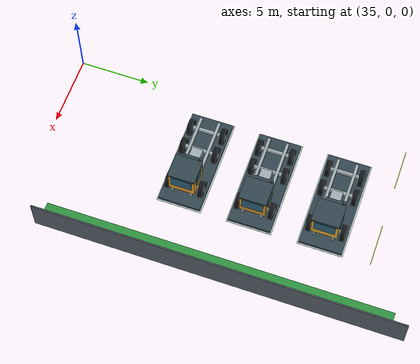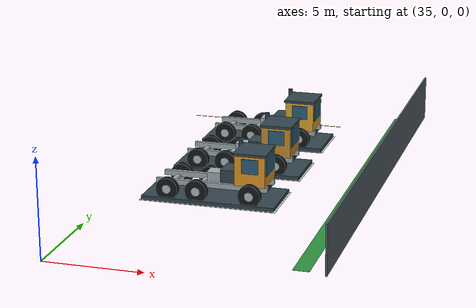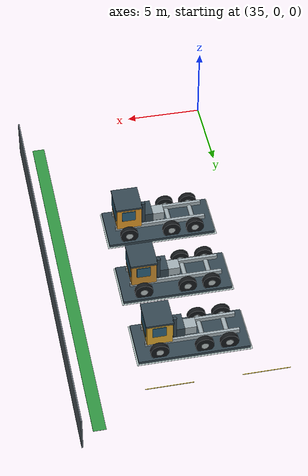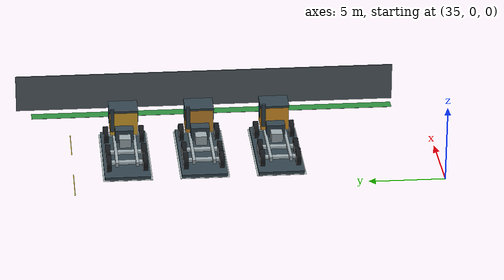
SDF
<sdf version="1.7">
 <world name="warehouse_layout_demo">
  <include><uri>model://sun</uri></include>
  <model name="pedestrian_east_north">
   <static>true</static>
   <pose>46.7 14.25 0.055 0 0 0</pose>
   <link name="marking">
    <visual name="visual">
     <geometry><box><size>0.8 24.5 0.012</size></box></geometry>
     <material><ambient>0.18 0.57 0.25 1</ambient><diffuse>0.18 0.57 0.25 1</diffuse></material>
    </visual>
   </link>
  </model>
  <model name="east_fence_north">
   <static>true</static>
   <pose>47.9 14.65 1.25 0 0 0</pose>
   <link name="link">
    <collision name="collision">
     <geometry><box><size>0.09 25.7 2.5</size></box></geometry>
     <surface><friction><ode><mu>0.9</mu><mu2>0.9</mu2></ode></friction></surface>
    </collision>
    <visual name="visual">
     <geometry><box><size>0.09 25.7 2.5</size></box></geometry>
     <material><ambient>0.33 0.37 0.40 1</ambient><diffuse>0.33 0.37 0.40 1</diffuse></material>
    </visual>
   </link>
  </model>
  <model name="vehicle_stage_3_line_2_ne_pad">
   <static>true</static>
   <pose>40.0 10.5 0.012 0 0 0</pose>
   <link name="marking">
    <visual name="visual">
     <geometry><box><size>7.2 3.2 0.012</size></box></geometry>
     <material><ambient>0.72 0.79 0.78 1</ambient><diffuse>0.72 0.79 0.78 1</diffuse></material>
    </visual>
   </link>
  </model>
  <model name="vehicle_stage_3_line_2_ne">
   <static>true</static>
   <pose>40.0 10.5 0 0 0 0</pose>
   <link name="fixture">
    <collision name="collision">
     <pose>0 0 1.9 0 0 0</pose>
     <geometry><box><size>7.0 3.0 3.8</size></box></geometry>
    </collision>
    <visual name="service_platform">
     <pose>0 0 0.11 0 0 0</pose>
     <geometry><box><size>7.0 3.0 0.22</size></box></geometry>
     <material><ambient>0.20 0.27 0.31 1</ambient><diffuse>0.20 0.27 0.31 1</diffuse></material>
    </visual>
    <visual name="chassis_rail_0">
     <pose>0 -0.66 0.85 0 0 0</pose>
     <geometry><box><size>5.9 0.19 0.28</size></box></geometry>
     <material><ambient>0.63 0.68 0.70 1</ambient><diffuse>0.63 0.68 0.70 1</diffuse></material>
    </visual>
    <visual name="haul_tire_0_0">
     <pose>-2.2 -1.18 0.63 1.57079632679 0 0</pose>
     <geometry><cylinder><radius>0.58</radius><length>0.32</length></cylinder></geometry>
     <material><ambient>0.08 0.09 0.10 1</ambient><diffuse>0.08 0.09 0.10 1</diffuse></material>
    </visual>
    <visual name="tire_hub_0_0">
     <pose>-2.2 -1.18 0.63 1.57079632679 0 0</pose>
     <geometry><cylinder><radius>0.23</radius><length>0.34</length></cylinder></geometry>
     <material><ambient>0.70 0.74 0.74 1</ambient><diffuse>0.70 0.74 0.74 1</diffuse></material>
    </visual>
    <visual name="haul_tire_0_1">
     <pose>-0.65 -1.18 0.63 1.57079632679 0 0</pose>
     <geometry><cylinder><radius>0.58</radius><length>0.32</length></cylinder></geometry>
     <material><ambient>0.08 0.09 0.10 1</ambient><diffuse>0.08 0.09 0.10 1</diffuse></material>
    </visual>
    <visual name="tire_hub_0_1">
     <pose>-0.65 -1.18 0.63 1.57079632679 0 0</pose>
     <geometry><cylinder><radius>0.23</radius><length>0.34</length></cylinder></geometry>
     <material><ambient>0.70 0.74 0.74 1</ambient><diffuse>0.70 0.74 0.74 1</diffuse></material>
    </visual>
    <visual name="haul_tire_0_2">
     <pose>2.15 -1.18 0.63 1.57079632679 0 0</pose>
     <geometry><cylinder><radius>0.58</radius><length>0.32</length></cylinder></geometry>
     <material><ambient>0.08 0.09 0.10 1</ambient><diffuse>0.08 0.09 0.10 1</diffuse></material>
    </visual>
    <visual name="tire_hub_0_2">
     <pose>2.15 -1.18 0.63 1.57079632679 0 0</pose>
     <geometry><cylinder><radius>0.23</radius><length>0.34</length></cylinder></geometry>
     <material><ambient>0.70 0.74 0.74 1</ambient><diffuse>0.70 0.74 0.74 1</diffuse></material>
    </visual>
    <visual name="chassis_rail_1">
     <pose>0 0.66 0.85 0 0 0</pose>
     <geometry><box><size>5.9 0.19 0.28</size></box></geometry>
     <material><ambient>0.63 0.68 0.70 1</ambient><diffuse>0.63 0.68 0.70 1</diffuse></material>
    </visual>
    <visual name="haul_tire_1_0">
     <pose>-2.2 1.18 0.63 1.57079632679 0 0</pose>
     <geometry><cylinder><radius>0.58</radius><length>0.32</length></cylinder></geometry>
     <material><ambient>0.08 0.09 0.10 1</ambient><diffuse>0.08 0.09 0.10 1</diffuse></material>
    </visual>
    <visual name="tire_hub_1_0">
     <pose>-2.2 1.18 0.63 1.57079632679 0 0</pose>
     <geometry><cylinder><radius>0.23</radius><length>0.34</length></cylinder></geometry>
     <material><ambient>0.70 0.74 0.74 1</ambient><diffuse>0.70 0.74 0.74 1</diffuse></material>
    </visual>
    <visual name="haul_tire_1_1">
     <pose>-0.65 1.18 0.63 1.57079632679 0 0</pose>
     <geometry><cylinder><radius>0.58</radius><length>0.32</length></cylinder></geometry>
     <material><ambient>0.08 0.09 0.10 1</ambient><diffuse>0.08 0.09 0.10 1</diffuse></material>
    </visual>
    <visual name="tire_hub_1_1">
     <pose>-0.65 1.18 0.63 1.57079632679 0 0</pose>
     <geometry><cylinder><radius>0.23</radius><length>0.34</length></cylinder></geometry>
     <material><ambient>0.70 0.74 0.74 1</ambient><diffuse>0.70 0.74 0.74 1</diffuse></material>
    </visual>
    <visual name="haul_tire_1_2">
     <pose>2.15 1.18 0.63 1.57079632679 0 0</pose>
     <geometry><cylinder><radius>0.58</radius><length>0.32</length></cylinder></geometry>
     <material><ambient>0.08 0.09 0.10 1</ambient><diffuse>0.08 0.09 0.10 1</diffuse></material>
    </visual>
    <visual name="tire_hub_1_2">
     <pose>2.15 1.18 0.63 1.57079632679 0 0</pose>
     <geometry><cylinder><radius>0.23</radius><length>0.34</length></cylinder></geometry>
     <material><ambient>0.70 0.74 0.74 1</ambient><diffuse>0.70 0.74 0.74 1</diffuse></material>
    </visual>
    <visual name="drive_axle_0">
     <pose>-2.2 0 0.68 1.57079632679 0 0</pose>
     <geometry><cylinder><radius>0.15</radius><length>2.38</length></cylinder></geometry>
     <material><ambient>0.63 0.68 0.70 1</ambient><diffuse>0.63 0.68 0.70 1</diffuse></material>
    </visual>
    <visual name="drive_axle_1">
     <pose>-0.65 0 0.68 1.57079632679 0 0</pose>
     <geometry><cylinder><radius>0.15</radius><length>2.38</length></cylinder></geometry>
     <material><ambient>0.63 0.68 0.70 1</ambient><diffuse>0.63 0.68 0.70 1</diffuse></material>
    </visual>
    <visual name="drive_axle_2">
     <pose>2.15 0 0.68 1.57079632679 0 0</pose>
     <geometry><cylinder><radius>0.15</radius><length>2.38</length></cylinder></geometry>
     <material><ambient>0.63 0.68 0.70 1</ambient><diffuse>0.63 0.68 0.70 1</diffuse></material>
    </visual>
    <visual name="diesel_engine">
     <pose>1.15 0 1.26 0 0 0</pose>
     <geometry><box><size>1.38 1.22 0.83</size></box></geometry>
     <material><ambient>0.20 0.27 0.31 1</ambient><diffuse>0.20 0.27 0.31 1</diffuse></material>
    </visual>
    <visual name="gearbox">
     <pose>0.08 0 1.12 0 0 0</pose>
     <geometry><box><size>0.82 0.76 0.6</size></box></geometry>
     <material><ambient>0.63 0.68 0.70 1</ambient><diffuse>0.63 0.68 0.70 1</diffuse></material>
    </visual>
    <visual name="radiator_fan">
     <pose>1.98 0 1.29 1.57079632679 0 0</pose>
     <geometry><cylinder><radius>0.41</radius><length>0.15</length></cylinder></geometry>
     <material><ambient>0.76 0.80 0.79 1</ambient><diffuse>0.76 0.80 0.79 1</diffuse></material>
    </visual>
    <visual name="operator_cab">
     <pose>2.08 0 1.82 0 0 0</pose>
     <geometry><box><size>1.6 1.83 1.62</size></box></geometry>
     <material><ambient>0.89 0.60 0.15 1</ambient><diffuse>0.89 0.60 0.15 1</diffuse></material>
    </visual>
    <visual name="cab_roof">
     <pose>2.08 0 2.66 0 0 0</pose>
     <geometry><box><size>1.72 1.91 0.14</size></box></geometry>
     <material><ambient>0.20 0.27 0.31 1</ambient><diffuse>0.20 0.27 0.31 1</diffuse></material>
    </visual>
    <visual name="windshield">
     <pose>2.91 0 2.03 0 0 0</pose>
     <geometry><box><size>0.045 1.48 0.91</size></box></geometry>
     <material><ambient>0.17 0.38 0.48 1</ambient><diffuse>0.17 0.38 0.48 1</diffuse></material>
    </visual>
    <visual name="exhaust_stack">
     <pose>1.14 0.76 2.15 0.0 0 0</pose>
     <geometry><cylinder><radius>0.12</radius><length>1.57</length></cylinder></geometry>
     <material><ambient>0.20 0.27 0.31 1</ambient><diffuse>0.20 0.27 0.31 1</diffuse></material>
    </visual>
    <visual name="cab_side_glass_0">
     <pose>2.11 -0.95 2.08 0 0 0</pose>
     <geometry><box><size>0.87 0.035 0.76</size></box></geometry>
     <material><ambient>0.17 0.38 0.48 1</ambient><diffuse>0.17 0.38 0.48 1</diffuse></material>
    </visual>
    <visual name="cab_side_glass_1">
     <pose>2.11 0.95 2.08 0 0 0</pose>
     <geometry><box><size>0.87 0.035 0.76</size></box></geometry>
     <material><ambient>0.17 0.38 0.48 1</ambient><diffuse>0.17 0.38 0.48 1</diffuse></material>
    </visual>
   </link>
  </model>
  <model name="vehicle_stage_3_line_3_ne_pad">
   <static>true</static>
   <pose>40.0 15.5 0.012 0 0 0</pose>
   <link name="marking">
    <visual name="visual">
     <geometry><box><size>7.2 3.2 0.012</size></box></geometry>
     <material><ambient>0.72 0.79 0.78 1</ambient><diffuse>0.72 0.79 0.78 1</diffuse></material>
    </visual>
   </link>
  </model>
  <model name="vehicle_stage_3_line_3_ne">
   <static>true</static>
   <pose>40.0 15.5 0 0 0 0</pose>
   <link name="fixture">
    <collision name="collision">
     <pose>0 0 1.9 0 0 0</pose>
     <geometry><box><size>7.0 3.0 3.8</size></box></geometry>
    </collision>
    <visual name="service_platform">
     <pose>0 0 0.11 0 0 0</pose>
     <geometry><box><size>7.0 3.0 0.22</size></box></geometry>
     <material><ambient>0.20 0.27 0.31 1</ambient><diffuse>0.20 0.27 0.31 1</diffuse></material>
    </visual>
    <visual name="chassis_rail_0">
     <pose>0 -0.66 0.85 0 0 0</pose>
     <geometry><box><size>5.9 0.19 0.28</size></box></geometry>
     <material><ambient>0.63 0.68 0.70 1</ambient><diffuse>0.63 0.68 0.70 1</diffuse></material>
    </visual>
    <visual name="haul_tire_0_0">
     <pose>-2.2 -1.18 0.63 1.57079632679 0 0</pose>
     <geometry><cylinder><radius>0.58</radius><length>0.32</length></cylinder></geometry>
     <material><ambient>0.08 0.09 0.10 1</ambient><diffuse>0.08 0.09 0.10 1</diffuse></material>
    </visual>
    <visual name="tire_hub_0_0">
     <pose>-2.2 -1.18 0.63 1.57079632679 0 0</pose>
     <geometry><cylinder><radius>0.23</radius><length>0.34</length></cylinder></geometry>
     <material><ambient>0.70 0.74 0.74 1</ambient><diffuse>0.70 0.74 0.74 1</diffuse></material>
    </visual>
    <visual name="haul_tire_0_1">
     <pose>-0.65 -1.18 0.63 1.57079632679 0 0</pose>
     <geometry><cylinder><radius>0.58</radius><length>0.32</length></cylinder></geometry>
     <material><ambient>0.08 0.09 0.10 1</ambient><diffuse>0.08 0.09 0.10 1</diffuse></material>
    </visual>
    <visual name="tire_hub_0_1">
     <pose>-0.65 -1.18 0.63 1.57079632679 0 0</pose>
     <geometry><cylinder><radius>0.23</radius><length>0.34</length></cylinder></geometry>
     <material><ambient>0.70 0.74 0.74 1</ambient><diffuse>0.70 0.74 0.74 1</diffuse></material>
    </visual>
    <visual name="haul_tire_0_2">
     <pose>2.15 -1.18 0.63 1.57079632679 0 0</pose>
     <geometry><cylinder><radius>0.58</radius><length>0.32</length></cylinder></geometry>
     <material><ambient>0.08 0.09 0.10 1</ambient><diffuse>0.08 0.09 0.10 1</diffuse></material>
    </visual>
    <visual name="tire_hub_0_2">
     <pose>2.15 -1.18 0.63 1.57079632679 0 0</pose>
     <geometry><cylinder><radius>0.23</radius><length>0.34</length></cylinder></geometry>
     <material><ambient>0.70 0.74 0.74 1</ambient><diffuse>0.70 0.74 0.74 1</diffuse></material>
    </visual>
    <visual name="chassis_rail_1">
     <pose>0 0.66 0.85 0 0 0</pose>
     <geometry><box><size>5.9 0.19 0.28</size></box></geometry>
     <material><ambient>0.63 0.68 0.70 1</ambient><diffuse>0.63 0.68 0.70 1</diffuse></material>
    </visual>
    <visual name="haul_tire_1_0">
     <pose>-2.2 1.18 0.63 1.57079632679 0 0</pose>
     <geometry><cylinder><radius>0.58</radius><length>0.32</length></cylinder></geometry>
     <material><ambient>0.08 0.09 0.10 1</ambient><diffuse>0.08 0.09 0.10 1</diffuse></material>
    </visual>
    <visual name="tire_hub_1_0">
     <pose>-2.2 1.18 0.63 1.57079632679 0 0</pose>
     <geometry><cylinder><radius>0.23</radius><length>0.34</length></cylinder></geometry>
     <material><ambient>0.70 0.74 0.74 1</ambient><diffuse>0.70 0.74 0.74 1</diffuse></material>
    </visual>
    <visual name="haul_tire_1_1">
     <pose>-0.65 1.18 0.63 1.57079632679 0 0</pose>
     <geometry><cylinder><radius>0.58</radius><length>0.32</length></cylinder></geometry>
     <material><ambient>0.08 0.09 0.10 1</ambient><diffuse>0.08 0.09 0.10 1</diffuse></material>
    </visual>
    <visual name="tire_hub_1_1">
     <pose>-0.65 1.18 0.63 1.57079632679 0 0</pose>
     <geometry><cylinder><radius>0.23</radius><length>0.34</length></cylinder></geometry>
     <material><ambient>0.70 0.74 0.74 1</ambient><diffuse>0.70 0.74 0.74 1</diffuse></material>
    </visual>
    <visual name="haul_tire_1_2">
     <pose>2.15 1.18 0.63 1.57079632679 0 0</pose>
     <geometry><cylinder><radius>0.58</radius><length>0.32</length></cylinder></geometry>
     <material><ambient>0.08 0.09 0.10 1</ambient><diffuse>0.08 0.09 0.10 1</diffuse></material>
    </visual>
    <visual name="tire_hub_1_2">
     <pose>2.15 1.18 0.63 1.57079632679 0 0</pose>
     <geometry><cylinder><radius>0.23</radius><length>0.34</length></cylinder></geometry>
     <material><ambient>0.70 0.74 0.74 1</ambient><diffuse>0.70 0.74 0.74 1</diffuse></material>
    </visual>
    <visual name="drive_axle_0">
     <pose>-2.2 0 0.68 1.57079632679 0 0</pose>
     <geometry><cylinder><radius>0.15</radius><length>2.38</length></cylinder></geometry>
     <material><ambient>0.63 0.68 0.70 1</ambient><diffuse>0.63 0.68 0.70 1</diffuse></material>
    </visual>
    <visual name="drive_axle_1">
     <pose>-0.65 0 0.68 1.57079632679 0 0</pose>
     <geometry><cylinder><radius>0.15</radius><length>2.38</length></cylinder></geometry>
     <material><ambient>0.63 0.68 0.70 1</ambient><diffuse>0.63 0.68 0.70 1</diffuse></material>
    </visual>
    <visual name="drive_axle_2">
     <pose>2.15 0 0.68 1.57079632679 0 0</pose>
     <geometry><cylinder><radius>0.15</radius><length>2.38</length></cylinder></geometry>
     <material><ambient>0.63 0.68 0.70 1</ambient><diffuse>0.63 0.68 0.70 1</diffuse></material>
    </visual>
    <visual name="diesel_engine">
     <pose>1.15 0 1.26 0 0 0</pose>
     <geometry><box><size>1.38 1.22 0.83</size></box></geometry>
     <material><ambient>0.20 0.27 0.31 1</ambient><diffuse>0.20 0.27 0.31 1</diffuse></material>
    </visual>
    <visual name="gearbox">
     <pose>0.08 0 1.12 0 0 0</pose>
     <geometry><box><size>0.82 0.76 0.6</size></box></geometry>
     <material><ambient>0.63 0.68 0.70 1</ambient><diffuse>0.63 0.68 0.70 1</diffuse></material>
    </visual>
    <visual name="radiator_fan">
     <pose>1.98 0 1.29 1.57079632679 0 0</pose>
     <geometry><cylinder><radius>0.41</radius><length>0.15</length></cylinder></geometry>
     <material><ambient>0.76 0.80 0.79 1</ambient><diffuse>0.76 0.80 0.79 1</diffuse></material>
    </visual>
    <visual name="operator_cab">
     <pose>2.08 0 1.82 0 0 0</pose>
     <geometry><box><size>1.6 1.83 1.62</size></box></geometry>
     <material><ambient>0.79 0.55 0.18 1</ambient><diffuse>0.79 0.55 0.18 1</diffuse></material>
    </visual>
    <visual name="cab_roof">
     <pose>2.08 0 2.66 0 0 0</pose>
     <geometry><box><size>1.72 1.91 0.14</size></box></geometry>
     <material><ambient>0.20 0.27 0.31 1</ambient><diffuse>0.20 0.27 0.31 1</diffuse></material>
    </visual>
    <visual name="windshield">
     <pose>2.91 0 2.03 0 0 0</pose>
     <geometry><box><size>0.045 1.48 0.91</size></box></geometry>
     <material><ambient>0.17 0.38 0.48 1</ambient><diffuse>0.17 0.38 0.48 1</diffuse></material>
    </visual>
    <visual name="exhaust_stack">
     <pose>1.14 0.76 2.15 0.0 0 0</pose>
     <geometry><cylinder><radius>0.12</radius><length>1.57</length></cylinder></geometry>
     <material><ambient>0.20 0.27 0.31 1</ambient><diffuse>0.20 0.27 0.31 1</diffuse></material>
    </visual>
    <visual name="cab_side_glass_0">
     <pose>2.11 -0.95 2.08 0 0 0</pose>
     <geometry><box><size>0.87 0.035 0.76</size></box></geometry>
     <material><ambient>0.17 0.38 0.48 1</ambient><diffuse>0.17 0.38 0.48 1</diffuse></material>
    </visual>
    <visual name="cab_side_glass_1">
     <pose>2.11 0.95 2.08 0 0 0</pose>
     <geometry><box><size>0.87 0.035 0.76</size></box></geometry>
     <material><ambient>0.17 0.38 0.48 1</ambient><diffuse>0.17 0.38 0.48 1</diffuse></material>
    </visual>
   </link>
  </model>
  <model name="vehicle_stage_3_line_4_ne_pad">
   <static>true</static>
   <pose>40.0 20.5 0.012 0 0 0</pose>
   <link name="marking">
    <visual name="visual">
     <geometry><box><size>7.2 3.2 0.012</size></box></geometry>
     <material><ambient>0.72 0.79 0.78 1</ambient><diffuse>0.72 0.79 0.78 1</diffuse></material>
    </visual>
   </link>
  </model>
  <model name="vehicle_stage_3_line_4_ne">
   <static>true</static>
   <pose>40.0 20.5 0 0 0 0</pose>
   <link name="fixture">
    <collision name="collision">
     <pose>0 0 1.9 0 0 0</pose>
     <geometry><box><size>7.0 3.0 3.8</size></box></geometry>
    </collision>
    <visual name="service_platform">
     <pose>0 0 0.11 0 0 0</pose>
     <geometry><box><size>7.0 3.0 0.22</size></box></geometry>
     <material><ambient>0.20 0.27 0.31 1</ambient><diffuse>0.20 0.27 0.31 1</diffuse></material>
    </visual>
    <visual name="chassis_rail_0">
     <pose>0 -0.66 0.85 0 0 0</pose>
     <geometry><box><size>5.9 0.19 0.28</size></box></geometry>
     <material><ambient>0.63 0.68 0.70 1</ambient><diffuse>0.63 0.68 0.70 1</diffuse></material>
    </visual>
    <visual name="haul_tire_0_0">
     <pose>-2.2 -1.18 0.63 1.57079632679 0 0</pose>
     <geometry><cylinder><radius>0.58</radius><length>0.32</length></cylinder></geometry>
     <material><ambient>0.08 0.09 0.10 1</ambient><diffuse>0.08 0.09 0.10 1</diffuse></material>
    </visual>
    <visual name="tire_hub_0_0">
     <pose>-2.2 -1.18 0.63 1.57079632679 0 0</pose>
     <geometry><cylinder><radius>0.23</radius><length>0.34</length></cylinder></geometry>
     <material><ambient>0.70 0.74 0.74 1</ambient><diffuse>0.70 0.74 0.74 1</diffuse></material>
    </visual>
    <visual name="haul_tire_0_1">
     <pose>-0.65 -1.18 0.63 1.57079632679 0 0</pose>
     <geometry><cylinder><radius>0.58</radius><length>0.32</length></cylinder></geometry>
     <material><ambient>0.08 0.09 0.10 1</ambient><diffuse>0.08 0.09 0.10 1</diffuse></material>
    </visual>
    <visual name="tire_hub_0_1">
     <pose>-0.65 -1.18 0.63 1.57079632679 0 0</pose>
     <geometry><cylinder><radius>0.23</radius><length>0.34</length></cylinder></geometry>
     <material><ambient>0.70 0.74 0.74 1</ambient><diffuse>0.70 0.74 0.74 1</diffuse></material>
    </visual>
    <visual name="haul_tire_0_2">
     <pose>2.15 -1.18 0.63 1.57079632679 0 0</pose>
     <geometry><cylinder><radius>0.58</radius><length>0.32</length></cylinder></geometry>
     <material><ambient>0.08 0.09 0.10 1</ambient><diffuse>0.08 0.09 0.10 1</diffuse></material>
    </visual>
    <visual name="tire_hub_0_2">
     <pose>2.15 -1.18 0.63 1.57079632679 0 0</pose>
     <geometry><cylinder><radius>0.23</radius><length>0.34</length></cylinder></geometry>
     <material><ambient>0.70 0.74 0.74 1</ambient><diffuse>0.70 0.74 0.74 1</diffuse></material>
    </visual>
    <visual name="chassis_rail_1">
     <pose>0 0.66 0.85 0 0 0</pose>
     <geometry><box><size>5.9 0.19 0.28</size></box></geometry>
     <material><ambient>0.63 0.68 0.70 1</ambient><diffuse>0.63 0.68 0.70 1</diffuse></material>
    </visual>
    <visual name="haul_tire_1_0">
     <pose>-2.2 1.18 0.63 1.57079632679 0 0</pose>
     <geometry><cylinder><radius>0.58</radius><length>0.32</length></cylinder></geometry>
     <material><ambient>0.08 0.09 0.10 1</ambient><diffuse>0.08 0.09 0.10 1</diffuse></material>
    </visual>
    <visual name="tire_hub_1_0">
     <pose>-2.2 1.18 0.63 1.57079632679 0 0</pose>
     <geometry><cylinder><radius>0.23</radius><length>0.34</length></cylinder></geometry>
     <material><ambient>0.70 0.74 0.74 1</ambient><diffuse>0.70 0.74 0.74 1</diffuse></material>
    </visual>
    <visual name="haul_tire_1_1">
     <pose>-0.65 1.18 0.63 1.57079632679 0 0</pose>
     <geometry><cylinder><radius>0.58</radius><length>0.32</length></cylinder></geometry>
     <material><ambient>0.08 0.09 0.10 1</ambient><diffuse>0.08 0.09 0.10 1</diffuse></material>
    </visual>
    <visual name="tire_hub_1_1">
     <pose>-0.65 1.18 0.63 1.57079632679 0 0</pose>
     <geometry><cylinder><radius>0.23</radius><length>0.34</length></cylinder></geometry>
     <material><ambient>0.70 0.74 0.74 1</ambient><diffuse>0.70 0.74 0.74 1</diffuse></material>
    </visual>
    <visual name="haul_tire_1_2">
     <pose>2.15 1.18 0.63 1.57079632679 0 0</pose>
     <geometry><cylinder><radius>0.58</radius><length>0.32</length></cylinder></geometry>
     <material><ambient>0.08 0.09 0.10 1</ambient><diffuse>0.08 0.09 0.10 1</diffuse></material>
    </visual>
    <visual name="tire_hub_1_2">
     <pose>2.15 1.18 0.63 1.57079632679 0 0</pose>
     <geometry><cylinder><radius>0.23</radius><length>0.34</length></cylinder></geometry>
     <material><ambient>0.70 0.74 0.74 1</ambient><diffuse>0.70 0.74 0.74 1</diffuse></material>
    </visual>
    <visual name="drive_axle_0">
     <pose>-2.2 0 0.68 1.57079632679 0 0</pose>
     <geometry><cylinder><radius>0.15</radius><length>2.38</length></cylinder></geometry>
     <material><ambient>0.63 0.68 0.70 1</ambient><diffuse>0.63 0.68 0.70 1</diffuse></material>
    </visual>
    <visual name="drive_axle_1">
     <pose>-0.65 0 0.68 1.57079632679 0 0</pose>
     <geometry><cylinder><radius>0.15</radius><length>2.38</length></cylinder></geometry>
     <material><ambient>0.63 0.68 0.70 1</ambient><diffuse>0.63 0.68 0.70 1</diffuse></material>
    </visual>
    <visual name="drive_axle_2">
     <pose>2.15 0 0.68 1.57079632679 0 0</pose>
     <geometry><cylinder><radius>0.15</radius><length>2.38</length></cylinder></geometry>
     <material><ambient>0.63 0.68 0.70 1</ambient><diffuse>0.63 0.68 0.70 1</diffuse></material>
    </visual>
    <visual name="diesel_engine">
     <pose>1.15 0 1.26 0 0 0</pose>
     <geometry><box><size>1.38 1.22 0.83</size></box></geometry>
     <material><ambient>0.20 0.27 0.31 1</ambient><diffuse>0.20 0.27 0.31 1</diffuse></material>
    </visual>
    <visual name="gearbox">
     <pose>0.08 0 1.12 0 0 0</pose>
     <geometry><box><size>0.82 0.76 0.6</size></box></geometry>
     <material><ambient>0.63 0.68 0.70 1</ambient><diffuse>0.63 0.68 0.70 1</diffuse></material>
    </visual>
    <visual name="radiator_fan">
     <pose>1.98 0 1.29 1.57079632679 0 0</pose>
     <geometry><cylinder><radius>0.41</radius><length>0.15</length></cylinder></geometry>
     <material><ambient>0.76 0.80 0.79 1</ambient><diffuse>0.76 0.80 0.79 1</diffuse></material>
    </visual>
    <visual name="operator_cab">
     <pose>2.08 0 1.82 0 0 0</pose>
     <geometry><box><size>1.6 1.83 1.62</size></box></geometry>
     <material><ambient>0.87 0.66 0.18 1</ambient><diffuse>0.87 0.66 0.18 1</diffuse></material>
    </visual>
    <visual name="cab_roof">
     <pose>2.08 0 2.66 0 0 0</pose>
     <geometry><box><size>1.72 1.91 0.14</size></box></geometry>
     <material><ambient>0.20 0.27 0.31 1</ambient><diffuse>0.20 0.27 0.31 1</diffuse></material>
    </visual>
    <visual name="windshield">
     <pose>2.91 0 2.03 0 0 0</pose>
     <geometry><box><size>0.045 1.48 0.91</size></box></geometry>
     <material><ambient>0.17 0.38 0.48 1</ambient><diffuse>0.17 0.38 0.48 1</diffuse></material>
    </visual>
    <visual name="exhaust_stack">
     <pose>1.14 0.76 2.15 0.0 0 0</pose>
     <geometry><cylinder><radius>0.12</radius><length>1.57</length></cylinder></geometry>
     <material><ambient>0.20 0.27 0.31 1</ambient><diffuse>0.20 0.27 0.31 1</diffuse></material>
    </visual>
    <visual name="cab_side_glass_0">
     <pose>2.11 -0.95 2.08 0 0 0</pose>
     <geometry><box><size>0.87 0.035 0.76</size></box></geometry>
     <material><ambient>0.17 0.38 0.48 1</ambient><diffuse>0.17 0.38 0.48 1</diffuse></material>
    </visual>
    <visual name="cab_side_glass_1">
     <pose>2.11 0.95 2.08 0 0 0</pose>
     <geometry><box><size>0.87 0.035 0.76</size></box></geometry>
     <material><ambient>0.17 0.38 0.48 1</ambient><diffuse>0.17 0.38 0.48 1</diffuse></material>
    </visual>
   </link>
  </model>
  <model name="road_dashed_line_14">
   <static>true</static>
   <pose>36 24.0 0.045 0 0 0</pose>
   <link name="marking">
    <visual name="visual">
     <geometry><box><size>3.0 0.042 0.012</size></box></geometry>
     <material><ambient>0.96 0.82 0.12 1</ambient><diffuse>0.96 0.82 0.12 1</diffuse></material>
    </visual>
   </link>
  </model>
  <model name="road_dashed_line_15">
   <static>true</static>
   <pose>42 24.0 0.045 0 0 0</pose>
   <link name="marking">
    <visual name="visual">
     <geometry><box><size>3.0 0.042 0.012</size></box></geometry>
     <material><ambient>0.96 0.82 0.12 1</ambient><diffuse>0.96 0.82 0.12 1</diffuse></material>
    </visual>
   </link>
  </model>
 </world>
</sdf>
